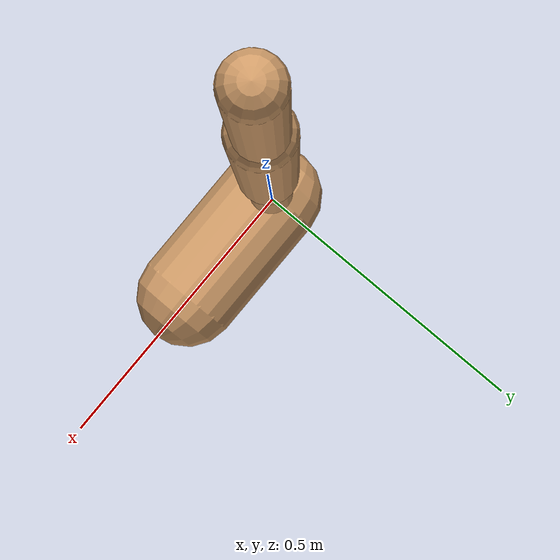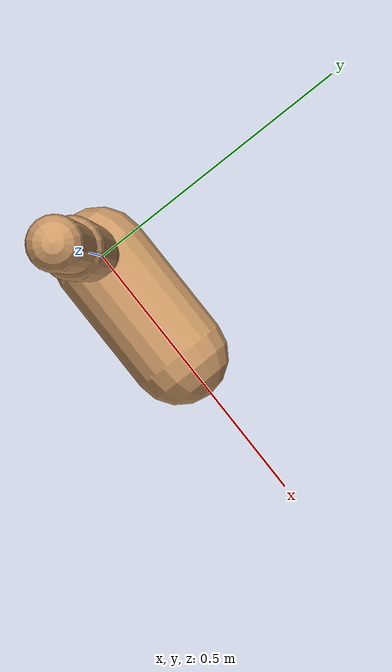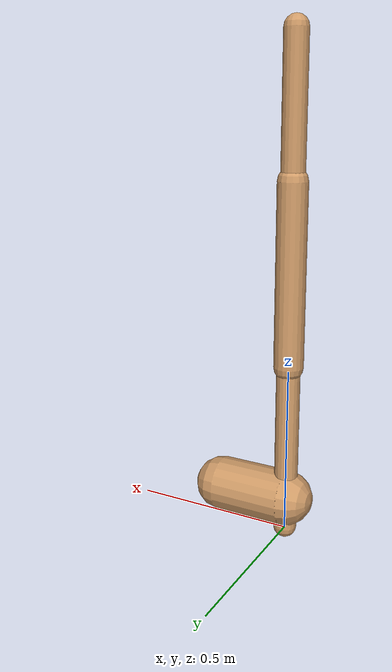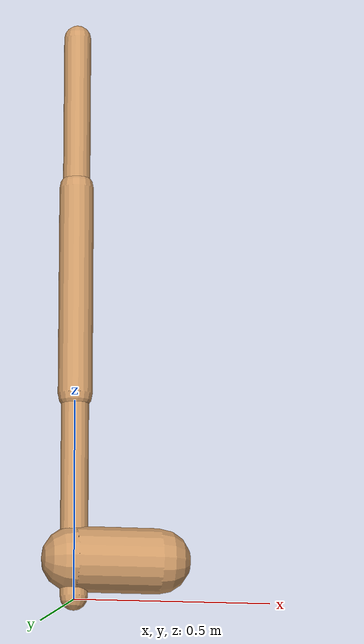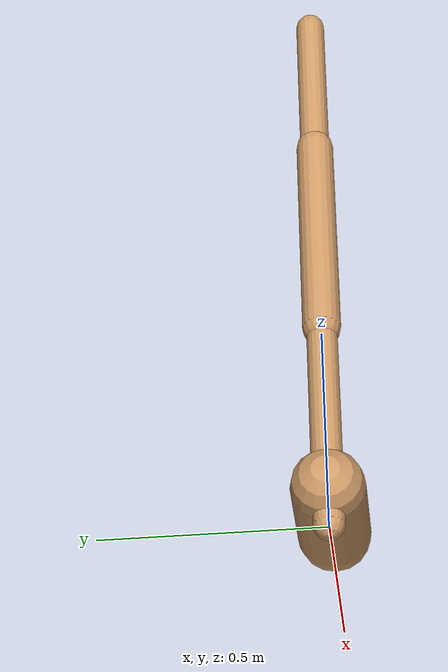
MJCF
<mujoco model="walker2d">
  <compiler angle="degree" coordinate="global" inertiafromgeom="true" />
  <default>
    <joint armature="0.01" damping=".1" limited="true" />
    <geom conaffinity="0" condim="3" contype="1" density="1000" friction="0.8 .1 .1" rgba="0.8 0.6 .4 1" />
  </default>
  <option integrator="RK4" timestep="0.002" />
  <worldbody>

    <body name="torso" pos="0 0 0.17626445322755438">
      <joint armature="0" axis="1 0 0" damping="0" limited="false" name="ignorex" pos="0 0 0" stiffness="0" type="slide" />
      <joint armature="0" axis="0 0 1" damping="0" limited="false" name="ignorez" pos="0 0 0" ref="1.25" stiffness="0" type="slide" />
      <joint armature="0" axis="0 1 0" damping="0" limited="false" name="ignorey" pos="0 0 0" stiffness="0" type="hinge" />
      <geom fromto="0 0 1.45 0 0 1.05" name="torso_geom" size="0.03479477964873785" type="capsule" />
      <body name="thigh">
        <joint axis="0 -1 0" name="thigh_joint" pos="0 0 1.05" range="-150 0" type="hinge" />
        <geom fromto="0.0 0.0 1.05 0.0 0.0 0.5165063116290531" name="thigh_geom" size="0.04397426254865371" type="capsule" />
        <body name="leg" pos="0.0 0.0 -0.08349368837094684">
          <joint axis="0 -1 0" name="leg_joint" pos="0 0 0.6" range="-150 0" type="hinge" />
          <geom fromto="0.0 0.0 0.6 0.0 0.0 0.007229235143392437" name="leg_geom" size="0.03517941003892297" type="capsule" />
          <body name="foot" pos="0.0 0.0 -0.09277076485660757">
            <joint axis="0 -1 0" name="foot_joint" pos="0 0 0.1" range="-45 45" type="hinge" />
            <geom fromto="-0.0 0.0 0.1 0.21317500696354008 0.0 0.1" name="foot_geom" size="0.08248944403226231" type="capsule" />
          </body>
        </body>
      </body>

      <body name="thigh_left">
        <joint axis="0 -1 0" name="thigh_left_joint" pos="0 0 1.05" range="-150 0" type="hinge" />
        <geom fromto="0.0 0.0 1.05 0.0 0.0 0.5165063116290531" name="thigh_left_geom" rgba=".7 .3 .6 1" size="0.04397426254865371" type="capsule" />
        <body name="leg_left" pos="0.0 0.0 -0.08349368837094684">
          <joint axis="0 -1 0" name="leg_left_joint" pos="0 0 0.6" range="-150 0" type="hinge" />
          <geom fromto="0.0 0.0 0.6 0.0 0.0 0.007229235143392437" name="leg_left_geom" rgba=".7 .3 .6 1" size="0.03517941003892297" type="capsule" />
          <body name="foot_left" pos="0.0 0.0 -0.09277076485660757">
            <joint axis="0 -1 0" name="foot_left_joint" pos="0 0 0.1" range="-45 45" type="hinge" />
            <geom fromto="-0.0 0.0 0.1 0.21317500696354008 0.0 0.1" name="foot_left_geom" rgba=".7 .3 .6 1" size="0.08248944403226231" type="capsule" />
          </body>
        </body>
      </body>
    </body>
  </worldbody>
  <actuator>

    <motor ctrllimited="true" ctrlrange="-1.0 1.0" gear="100" joint="thigh_joint" />
    <motor ctrllimited="true" ctrlrange="-1.0 1.0" gear="100" joint="leg_joint" />
    <motor ctrllimited="true" ctrlrange="-1.0 1.0" gear="100" joint="foot_joint" />
    <motor ctrllimited="true" ctrlrange="-1.0 1.0" gear="100" joint="thigh_left_joint" />
    <motor ctrllimited="true" ctrlrange="-1.0 1.0" gear="100" joint="leg_left_joint" />
    <motor ctrllimited="true" ctrlrange="-1.0 1.0" gear="100" joint="foot_left_joint" />

  </actuator>
</mujoco>
